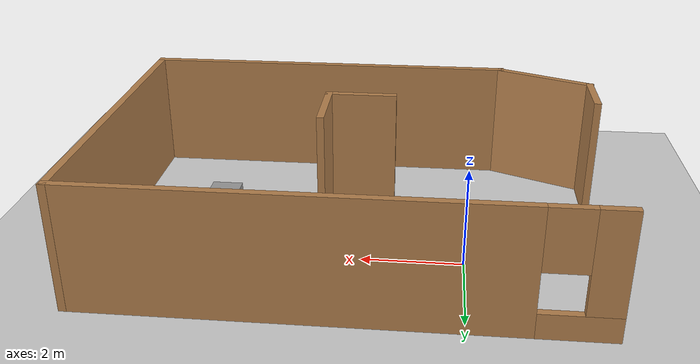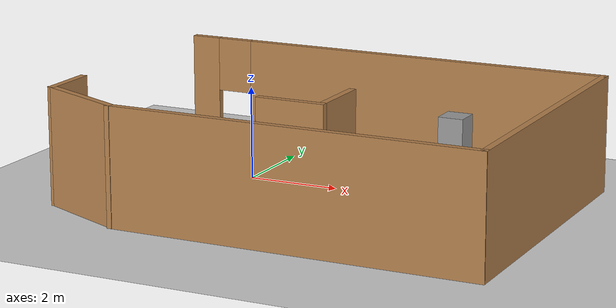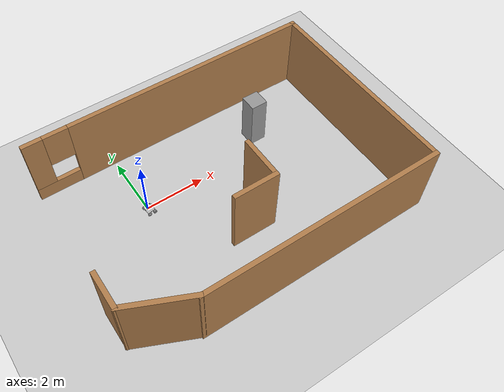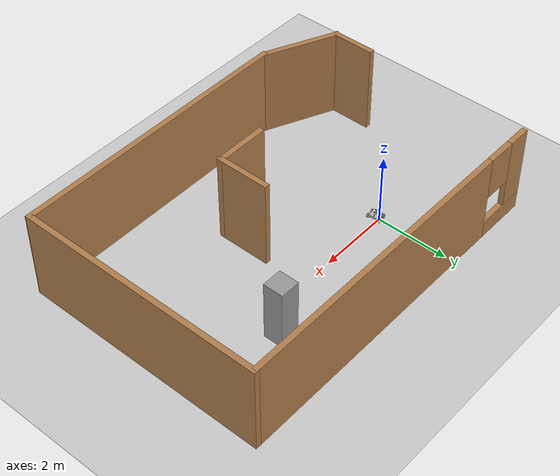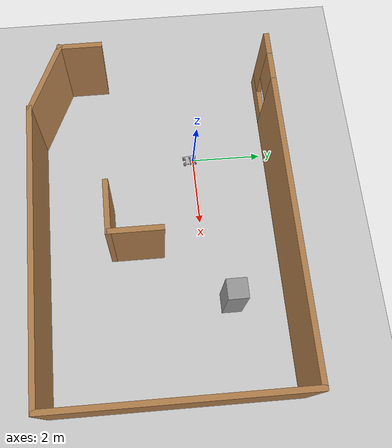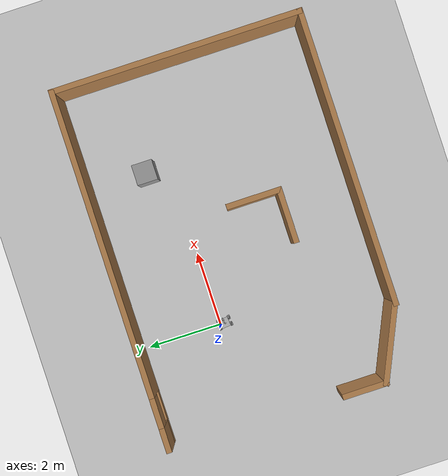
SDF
<sdf version="1.7">
 <world name="default">
  <light name="sun" type="directional">
   <pose>0 0 10 0 -0 0</pose>
   <diffuse>0.8 0.8 0.8 1</diffuse>
   <specular>0.2 0.2 0.2 1</specular>
   <attenuation>
    <range>1000</range>
    <constant>0.9</constant>
    <linear>0.01</linear>
    <quadratic>0.001</quadratic>
   </attenuation>
   <direction>-0.5 0.1 -0.9</direction>
   <spot><inner_angle>0</inner_angle><outer_angle>0</outer_angle><falloff>0</falloff></spot>
  </light>
  <model name="ground_plane">
   <static>1</static>
   <link name="link">
    <collision name="collision">
     <geometry><plane><normal>0 0 1</normal><size>100 100</size></plane></geometry>
     <surface>
      <contact><collide_bitmask>65535</collide_bitmask></contact>
      <friction><ode><mu>100</mu><mu2>50</mu2></ode></friction>
     </surface>
    </collision>
    <visual name="visual">
     <cast_shadows>0</cast_shadows>
     <geometry><plane><normal>0 0 1</normal><size>100 100</size></plane></geometry>
     <material>
      <script><uri>file://media/materials/scripts/gazebo.material</uri><name>Gazebo/Grey</name></script>
     </material>
    </visual>
   </link>
  </model>
  <gravity>0 0 -9.8</gravity>
  <magnetic_field>6e-06 2.3e-05 -4.2e-05</magnetic_field>
  <atmosphere type="adiabatic"/>
  <physics type="ode">
   <max_step_size>0.001</max_step_size>
   <real_time_factor>1</real_time_factor>
   <real_time_update_rate>1000</real_time_update_rate>
  </physics>
  <scene><ambient>0.4 0.4 0.4 1</ambient><background>0.7 0.7 0.7 1</background><shadows>1</shadows></scene>
  <spherical_coordinates>
   <surface_model>EARTH_WGS84</surface_model>
   <latitude_deg>0</latitude_deg>
   <longitude_deg>0</longitude_deg>
   <elevation>0</elevation>
   <heading_deg>0</heading_deg>
  </spherical_coordinates>
  <model name="robot_model_final">
   <link name="base_link">
    <inertial>
     <pose>0.000352 0.000116 -0.034864 0 -0 0</pose>
     <mass>5.02168</mass>
     <inertia>
      <ixx>0.060116</ixx>
      <ixy>0.00093679</ixy>
      <ixz>-0.00036404</ixz>
      <iyy>0.0327714</iyy>
      <iyz>7.84313e-06</iyz>
      <izz>0.0847851</izz>
     </inertia>
    </inertial>
    <collision name="base_link_collision">
     <geometry>
      <mesh><scale>1 1 1</scale><uri>/home/doan/catkin_ws/src/robot_model_final/meshes/base_link.STL</uri></mesh>
     </geometry>
    </collision>
    <collision name="base_link_fixed_joint_lump__camera_link_collision_1">
     <pose>0.153622 0.006248 -0.050506 0 -0 0</pose>
     <geometry>
      <mesh><scale>1 1 1</scale><uri>/home/doan/catkin_ws/src/robot_model_final/meshes/camera_link.STL</uri></mesh>
     </geometry>
    </collision>
    <collision name="base_link_fixed_joint_lump__imu_link_collision_2">
     <pose>0.13613 -0.002005 -0.00806 0 -0 0</pose>
     <geometry>
      <mesh><scale>1 1 1</scale><uri>/home/doan/catkin_ws/src/robot_model_final/meshes/imu_link.STL</uri></mesh>
     </geometry>
    </collision>
    <collision name="base_link_fixed_joint_lump__lidar_link_collision_3">
     <pose>0.081426 0.001654 0.010345 0 -0.002402 0.000145</pose>
     <geometry>
      <mesh><scale>1 1 1</scale><uri>/home/doan/catkin_ws/src/robot_model_final/meshes/lidar_link.STL</uri></mesh>
     </geometry>
    </collision>
    <visual name="base_link_visual">
     <geometry>
      <mesh><scale>1 1 1</scale><uri>/home/doan/catkin_ws/src/robot_model_final/meshes/base_link.STL</uri></mesh>
     </geometry>
    </visual>
    <visual name="base_link_fixed_joint_lump__camera_link_visual_1">
     <pose>0.153622 0.006248 -0.050506 0 -0 0</pose>
     <geometry>
      <mesh><scale>1 1 1</scale><uri>/home/doan/catkin_ws/src/robot_model_final/meshes/camera_link.STL</uri></mesh>
     </geometry>
    </visual>
    <visual name="base_link_fixed_joint_lump__imu_link_visual_2">
     <pose>0.13613 -0.002005 -0.00806 0 -0 0</pose>
     <geometry>
      <mesh><scale>1 1 1</scale><uri>/home/doan/catkin_ws/src/robot_model_final/meshes/imu_link.STL</uri></mesh>
     </geometry>
    </visual>
    <visual name="base_link_fixed_joint_lump__lidar_link_visual_3">
     <pose>0.081426 0.001654 0.010345 0 -0.002402 0.000145</pose>
     <geometry>
      <mesh><scale>1 1 1</scale><uri>/home/doan/catkin_ws/src/robot_model_final/meshes/lidar_link.STL</uri></mesh>
     </geometry>
    </visual>
    <sensor name="camera" type="camera">
     <visualize>1</visualize>
     <update_rate>10</update_rate>
     <camera>
      <horizontal_fov>1.089</horizontal_fov>
      <image><format>R8G8B8</format><width>640</width><height>480</height></image>
      <clip><near>0.05</near><far>8</far></clip>
     </camera>
     <plugin name="camera_controller" filename="libgazebo_ros_camera.so">
      <frame_name>camera_link_optical</frame_name>
      <robotNamespace>/</robotNamespace>
     </plugin>
     <pose>0.153622 0.006248 -0.050506 0 -0 0</pose>
    </sensor>
    <sensor name="imu_sensor" type="imu">
     <always_on>1</always_on>
     <update_rate>10</update_rate>
     <visualize>1</visualize>
     <topic>__default_topic__</topic>
     <plugin name="imu_plugin" filename="libgazebo_ros_imu_sensor.so">
      <topicName>imu</topicName>
      <bodyName>imu_link</bodyName>
      <updateRateHZ>10.0</updateRateHZ>
      <frameName>imu_link</frameName>
      <initialOrientationAsReference>0</initialOrientationAsReference>
      <robotNamespace>/</robotNamespace>
     </plugin>
     <pose>0.13613 -0.002005 -0.00806 0 -0 0</pose>
    </sensor>
    <sensor name="lidar_sensor" type="ray">
     <visualize>1</visualize>
     <update_rate>10</update_rate>
     <ray>
      <scan>
       <horizontal>
        <samples>720</samples>
        <resolution>1</resolution>
        <min_angle>-2.356</min_angle>
        <max_angle>2.356</max_angle>
       </horizontal>
       <vertical><samples>1</samples><min_angle>0</min_angle><max_angle>0</max_angle></vertical>
      </scan>
      <range><min>0.1</min><max>7</max><resolution>0.01</resolution></range>
     </ray>
     <plugin name="lidar_controller" filename="libgazebo_ros_laser.so">
      <topicName>/lidar/scan</topicName>
      <frameName>lidar_link</frameName>
      <robotNamespace>/</robotNamespace>
     </plugin>
     <pose>0.081426 0.001654 0.010345 0 -0.002402 0.000145</pose>
    </sensor>
   </link>
   <joint name="arm_joint_1" type="revolute">
    <pose relative_to="base_link">-4.3e-05 -0.008909 0.014 1.5708 -0 0</pose>
    <parent>base_link</parent>
    <child>arm_link_1</child>
    <axis>
     <xyz>0 0 -1</xyz>
     <limit><lower>-0.35</lower><upper>0.35</upper><effort>100</effort><velocity>10</velocity></limit>
     <dynamics>
      <damping>0.01</damping>
      <friction>0.01</friction>
      <spring_reference>0</spring_reference>
      <spring_stiffness>0</spring_stiffness>
     </dynamics>
    </axis>
   </joint>
   <link name="arm_link_1">
    <pose relative_to="arm_joint_1">0 0 0 0 -0 0</pose>
    <inertial>
     <pose>-0.011203 0.049126 -0.009019 0 -0 0</pose>
     <mass>0.0100783</mass>
     <inertia>
      <ixx>1.26951e-05</ixx>
      <ixy>2.7978e-06</ixy>
      <ixz>-1.03791e-09</ixz>
      <iyy>1.07547e-06</iyy>
      <iyz>2.8296e-09</iyz>
      <izz>1.37169e-05</izz>
     </inertia>
    </inertial>
    <collision name="arm_link_1_collision">
     <geometry>
      <mesh><scale>1 1 1</scale><uri>/home/doan/catkin_ws/src/robot_model_final/meshes/arm_link_1.STL</uri></mesh>
     </geometry>
    </collision>
    <visual name="arm_link_1_visual">
     <geometry>
      <mesh><scale>1 1 1</scale><uri>/home/doan/catkin_ws/src/robot_model_final/meshes/arm_link_1.STL</uri></mesh>
     </geometry>
    </visual>
   </link>
   <joint name="arm_joint_2" type="revolute">
    <pose relative_to="arm_link_1">-0.022231 0.097493 -0.020023 0 -0 0</pose>
    <parent>arm_link_1</parent>
    <child>arm_link_2</child>
    <axis>
     <xyz>0 0 -1</xyz>
     <limit><lower>-0.35</lower><upper>0.35</upper><effort>100</effort><velocity>10</velocity></limit>
     <dynamics>
      <damping>0.01</damping>
      <friction>0.01</friction>
      <spring_reference>0</spring_reference>
      <spring_stiffness>0</spring_stiffness>
     </dynamics>
    </axis>
   </joint>
   <link name="arm_link_2">
    <pose relative_to="arm_joint_2">0 0 0 0 -0 0</pose>
    <inertial>
     <pose>0.056954 0.002422 0.017957 0 -0 0</pose>
     <mass>0.0241823</mass>
     <inertia>
      <ixx>1.72297e-06</ixx>
      <ixy>1.37452e-08</ixy>
      <ixz>-3.60462e-08</ixz>
      <iyy>1.12176e-05</iyy>
      <iyz>-2.87807e-08</iyz>
      <izz>1.11719e-05</izz>
     </inertia>
    </inertial>
    <collision name="arm_link_2_collision">
     <geometry>
      <mesh><scale>1 1 1</scale><uri>/home/doan/catkin_ws/src/robot_model_final/meshes/arm_link_2.STL</uri></mesh>
     </geometry>
    </collision>
    <visual name="arm_link_2_visual">
     <geometry>
      <mesh><scale>1 1 1</scale><uri>/home/doan/catkin_ws/src/robot_model_final/meshes/arm_link_2.STL</uri></mesh>
     </geometry>
    </visual>
   </link>
   <joint name="l1_joint" type="revolute">
    <pose relative_to="base_link">-0.091887 -0.19175 -0.069221 1.5708 -0 0</pose>
    <parent>base_link</parent>
    <child>l1_link</child>
    <axis>
     <xyz>0 0 1</xyz>
     <limit><lower>-1e+16</lower><upper>1e+16</upper></limit>
     <dynamics><spring_reference>0</spring_reference><spring_stiffness>0</spring_stiffness></dynamics>
    </axis>
   </joint>
   <link name="l1_link">
    <pose relative_to="l1_joint">0 0 0 0 -0 0</pose>
    <inertial>
     <pose>-0 0 -0.0333 0 -0 0</pose>
     <mass>2</mass>
     <inertia>
      <ixx>0.000141926</ixx>
      <ixy>-2.08889e-17</ixy>
      <ixz>1.78583e-16</ixz>
      <iyy>0.000141926</iyy>
      <iyz>2.95383e-17</iyz>
      <izz>0.000160542</izz>
     </inertia>
    </inertial>
    <collision name="l1_link_collision">
     <geometry>
      <mesh><scale>1 1 1</scale><uri>/home/doan/catkin_ws/src/robot_model_final/meshes/l1_link.STL</uri></mesh>
     </geometry>
    </collision>
    <visual name="l1_link_visual">
     <geometry>
      <mesh><scale>1 1 1</scale><uri>/home/doan/catkin_ws/src/robot_model_final/meshes/l1_link.STL</uri></mesh>
     </geometry>
    </visual>
   </link>
   <joint name="l2_joint" type="revolute">
    <pose relative_to="base_link">0.092218 -0.19175 -0.068779 1.5708 -0 0</pose>
    <parent>base_link</parent>
    <child>l2_link</child>
    <axis>
     <xyz>0 0 1</xyz>
     <limit><lower>-1e+16</lower><upper>1e+16</upper></limit>
     <dynamics><spring_reference>0</spring_reference><spring_stiffness>0</spring_stiffness></dynamics>
    </axis>
   </joint>
   <link name="l2_link">
    <pose relative_to="l2_joint">0 0 0 0 -0 0</pose>
    <inertial>
     <pose>-0 0 -0.031104 0 -0 0</pose>
     <mass>2</mass>
     <inertia>
      <ixx>0.000164666</ixx>
      <ixy>-2.88836e-17</ixy>
      <ixz>-9.8244e-17</ixz>
      <iyy>0.000164666</iyy>
      <iyz>-9.22282e-17</iyz>
      <izz>0.000205539</izz>
     </inertia>
    </inertial>
    <collision name="l2_link_collision">
     <geometry>
      <mesh><scale>1 1 1</scale><uri>/home/doan/catkin_ws/src/robot_model_final/meshes/l2_link.STL</uri></mesh>
     </geometry>
    </collision>
    <visual name="l2_link_visual">
     <geometry>
      <mesh><scale>1 1 1</scale><uri>/home/doan/catkin_ws/src/robot_model_final/meshes/l2_link.STL</uri></mesh>
     </geometry>
    </visual>
   </link>
   <joint name="r1_joint" type="revolute">
    <pose relative_to="base_link">-0.091887 0.19175 -0.069221 1.5708 -0 0</pose>
    <parent>base_link</parent>
    <child>r1_link</child>
    <axis>
     <xyz>0 0 1</xyz>
     <limit><lower>-1e+16</lower><upper>1e+16</upper></limit>
     <dynamics><spring_reference>0</spring_reference><spring_stiffness>0</spring_stiffness></dynamics>
    </axis>
   </joint>
   <link name="r1_link">
    <pose relative_to="r1_joint">0 0 0 0 -0 0</pose>
    <inertial>
     <pose>0 0 0.031896 0 -0 0</pose>
     <mass>2</mass>
     <inertia>
      <ixx>0.000164666</ixx>
      <ixy>6.69344e-17</ixy>
      <ixz>1.54303e-16</ixz>
      <iyy>0.000164666</iyy>
      <iyz>4.61155e-17</iyz>
      <izz>0.000205539</izz>
     </inertia>
    </inertial>
    <collision name="r1_link_collision">
     <geometry>
      <mesh><scale>1 1 1</scale><uri>/home/doan/catkin_ws/src/robot_model_final/meshes/r1_link.STL</uri></mesh>
     </geometry>
    </collision>
    <visual name="r1_link_visual">
     <geometry>
      <mesh><scale>1 1 1</scale><uri>/home/doan/catkin_ws/src/robot_model_final/meshes/r1_link.STL</uri></mesh>
     </geometry>
    </visual>
   </link>
   <joint name="r2_joint" type="revolute">
    <pose relative_to="base_link">0.092218 0.19175 -0.068779 1.5708 -0 0</pose>
    <parent>base_link</parent>
    <child>r2_link</child>
    <axis>
     <xyz>0 0 1</xyz>
     <limit><lower>-1e+16</lower><upper>1e+16</upper></limit>
     <dynamics><spring_reference>0</spring_reference><spring_stiffness>0</spring_stiffness></dynamics>
    </axis>
   </joint>
   <link name="r2_link">
    <pose relative_to="r2_joint">0 0 0 0 -0 0</pose>
    <inertial>
     <pose>0 0 0.0333 0 -0 0</pose>
     <mass>2</mass>
     <inertia>
      <ixx>0.000141926</ixx>
      <ixy>-7.06425e-18</ixy>
      <ixz>-1.3404e-16</ixz>
      <iyy>0.000141926</iyy>
      <iyz>-7.01698e-18</iyz>
      <izz>0.000160542</izz>
     </inertia>
    </inertial>
    <collision name="r2_link_collision">
     <geometry>
      <mesh><scale>1 1 1</scale><uri>/home/doan/catkin_ws/src/robot_model_final/meshes/r2_link.STL</uri></mesh>
     </geometry>
    </collision>
    <visual name="r2_link_visual">
     <geometry>
      <mesh><scale>1 1 1</scale><uri>/home/doan/catkin_ws/src/robot_model_final/meshes/r2_link.STL</uri></mesh>
     </geometry>
    </visual>
   </link>
   <plugin name="gazebo_ros_control" filename="libgazebo_ros_control.so">
    <robotNamespace>/</robotNamespace>
    <robotSimType>gazebo_ros_control/DefaultRobotHWSim</robotSimType>
    <legacyModeNS>1</legacyModeNS>
    <controlPeriod>0.001</controlPeriod>
   </plugin>
   <frame name="camera_joint" attached_to="base_link"><pose>0.153622 0.006248 -0.050506 0 -0 0</pose></frame>
   <frame name="camera_link" attached_to="camera_joint"/>
   <frame name="imu_joint" attached_to="base_link"><pose>0.13613 -0.002005 -0.00806 0 -0 0</pose></frame>
   <frame name="imu_link" attached_to="imu_joint"/>
   <frame name="lidar_joint" attached_to="base_link">
    <pose>0.081426 0.001654 0.010345 0 -0.002402 0.000145</pose>
   </frame>
   <frame name="lidar_link" attached_to="lidar_joint"/>
   <pose>0.008974 -0.115576 0.127888 -0.005571 0.002808 0.106209</pose>
  </model>
  <model name="edit_world">
   <pose>2.21794 -1.13681 0 0 -0 0</pose>
   <link name="Wall_10">
    <collision name="Wall_10_Collision">
     <geometry><box><size>6.81013 0.15 2.5</size></box></geometry>
     <pose>0 0 1.25 0 -0 0</pose>
    </collision>
    <visual name="Wall_10_Visual">
     <pose>0 0 1.25 0 -0 0</pose>
     <geometry><box><size>6.81013 0.15 2.5</size></box></geometry>
     <material>
      <script><uri>file://media/materials/scripts/gazebo.material</uri><name>Gazebo/Wood</name></script>
      <ambient>1 1 1 1</ambient>
     </material>
     <meta><layer>0</layer></meta>
    </visual>
    <pose>4.87217 0.012105 0 0 -0 1.5708</pose>
   </link>
   <link name="Wall_11">
    <pose>0.052056 3.34216 0 0 -0 3.14159</pose>
    <visual name="Wall_11_Visual_0">
     <pose>-0.7275 0 1.25 0 -0 0</pose>
     <geometry><box><size>8.295 0.15 2.5</size></box></geometry>
     <material>
      <script><uri>file://media/materials/scripts/gazebo.material</uri><name>Gazebo/Wood</name></script>
      <ambient>1 1 1 1</ambient>
     </material>
     <meta><layer>0</layer></meta>
    </visual>
    <collision name="Wall_11_Collision_0">
     <geometry><box><size>8.295 0.15 2.5</size></box></geometry>
     <pose>-0.7275 0 1.25 0 -0 0</pose>
    </collision>
    <visual name="Wall_11_Visual_1">
     <pose>4.1475 0 0.25 0 -0 0</pose>
     <geometry><box><size>1.455 0.15 0.5</size></box></geometry>
     <material>
      <script><uri>file://media/materials/scripts/gazebo.material</uri><name>Gazebo/Wood</name></script>
      <ambient>1 1 1 1</ambient>
     </material>
     <meta><layer>0</layer></meta>
    </visual>
    <collision name="Wall_11_Collision_1">
     <geometry><box><size>1.455 0.15 0.5</size></box></geometry>
     <pose>4.1475 0 0.25 0 -0 0</pose>
    </collision>
    <visual name="Wall_11_Visual_2">
     <pose>4.5475 0 1.5 0 -0 0</pose>
     <geometry><box><size>0.655 0.15 2</size></box></geometry>
     <material>
      <script><uri>file://media/materials/scripts/gazebo.material</uri><name>Gazebo/Wood</name></script>
      <ambient>1 1 1 1</ambient>
     </material>
     <meta><layer>0</layer></meta>
    </visual>
    <collision name="Wall_11_Collision_2">
     <geometry><box><size>0.655 0.15 2</size></box></geometry>
     <pose>4.5475 0 1.5 0 -0 0</pose>
    </collision>
    <visual name="Wall_11_Visual_3">
     <pose>3.82 0 1.9 0 -0 0</pose>
     <geometry><box><size>0.8 0.15 1.2</size></box></geometry>
     <material>
      <script><uri>file://media/materials/scripts/gazebo.material</uri><name>Gazebo/Wood</name></script>
      <ambient>1 1 1 1</ambient>
     </material>
     <meta><layer>0</layer></meta>
    </visual>
    <collision name="Wall_11_Collision_3">
     <geometry><box><size>0.8 0.15 1.2</size></box></geometry>
     <pose>3.82 0 1.9 0 -0 0</pose>
    </collision>
   </link>
   <link name="Wall_13">
    <collision name="Wall_13_Collision">
     <geometry><box><size>1.5 0.15 2.5</size></box></geometry>
     <pose>0 0 1.25 0 -0 0</pose>
    </collision>
    <visual name="Wall_13_Visual">
     <pose>0 0 1.25 0 -0 0</pose>
     <geometry><box><size>1.5 0.15 2.5</size></box></geometry>
     <material>
      <script><uri>file://media/materials/scripts/gazebo.material</uri><name>Gazebo/Wood</name></script>
      <ambient>1 1 1 1</ambient>
     </material>
     <meta><layer>0</layer></meta>
    </visual>
    <pose>0.692056 -0.738176 0 0 -0 -1.5708</pose>
   </link>
   <link name="Wall_14">
    <collision name="Wall_14_Collision">
     <geometry><box><size>1.5 0.15 2.5</size></box></geometry>
     <pose>0 0 1.25 0 -0 0</pose>
    </collision>
    <visual name="Wall_14_Visual">
     <pose>0 0 1.25 0 -0 0</pose>
     <geometry><box><size>1.5 0.15 2.5</size></box></geometry>
     <material>
      <script><uri>file://media/materials/scripts/gazebo.material</uri><name>Gazebo/Wood</name></script>
      <ambient>1 1 1 1</ambient>
     </material>
     <meta><layer>0</layer></meta>
    </visual>
    <pose>0.017056 -1.41318 0 0 -0 3.14159</pose>
   </link>
   <link name="Wall_4">
    <collision name="Wall_4_Collision">
     <geometry><box><size>2.20206 0.15 2.5</size></box></geometry>
     <pose>0 0 1.25 0 -0 0</pose>
    </collision>
    <visual name="Wall_4_Visual">
     <pose>0 0 1.25 0 -0 0</pose>
     <geometry><box><size>2.20206 0.15 2.5</size></box></geometry>
     <material>
      <script><uri>file://media/materials/scripts/gazebo.material</uri><name>Gazebo/Wood</name></script>
      <ambient>1 1 1 1</ambient>
     </material>
     <meta><layer>0</layer></meta>
    </visual>
    <pose>-3.91289 -2.89556 0 0 -0 -0.424284</pose>
   </link>
   <link name="Wall_7">
    <collision name="Wall_7_Collision">
     <geometry><box><size>1.25 0.15 2.5</size></box></geometry>
     <pose>0 0 1.25 0 -0 0</pose>
    </collision>
    <visual name="Wall_7_Visual">
     <pose>0 0 1.25 0 -0 0</pose>
     <geometry><box><size>1.25 0.15 2.5</size></box></geometry>
     <material>
      <script><uri>file://media/materials/scripts/gazebo.material</uri><name>Gazebo/Wood</name></script>
      <ambient>1 1 1 1</ambient>
     </material>
     <meta><layer>0</layer></meta>
    </visual>
    <pose>-4.84794 -1.92318 0 0 -0 -1.5708</pose>
   </link>
   <link name="Wall_9">
    <collision name="Wall_9_Collision">
     <geometry><box><size>8 0.15 2.5</size></box></geometry>
     <pose>0 0 1.25 0 -0 0</pose>
    </collision>
    <visual name="Wall_9_Visual">
     <pose>0 0 1.25 0 -0 0</pose>
     <geometry><box><size>8 0.15 2.5</size></box></geometry>
     <material>
      <script><uri>file://media/materials/scripts/gazebo.material</uri><name>Gazebo/Wood</name></script>
      <ambient>1 1 1 1</ambient>
     </material>
     <meta><layer>0</layer></meta>
    </visual>
    <pose>0.947169 -3.33806 0 0 -0 0</pose>
   </link>
   <static>1</static>
  </model>
  <model name="unit_box">
   <pose>4.44469 0.611881 0.863574 -1e-06 -0 -0.001299</pose>
   <link name="link">
    <inertial>
     <mass>1</mass>
     <inertia>
      <ixx>0.166667</ixx>
      <ixy>0</ixy>
      <ixz>0</ixz>
      <iyy>0.166667</iyy>
      <iyz>0</iyz>
      <izz>0.166667</izz>
     </inertia>
    </inertial>
    <collision name="collision"><geometry><box><size>0.546167 0.552111 1.72715</size></box></geometry></collision>
    <visual name="visual">
     <geometry><box><size>0.546167 0.552111 1.72715</size></box></geometry>
     <material>
      <script><name>Gazebo/Grey</name><uri>file://media/materials/scripts/gazebo.material</uri></script>
     </material>
    </visual>
   </link>
  </model>
 </world>
</sdf>
